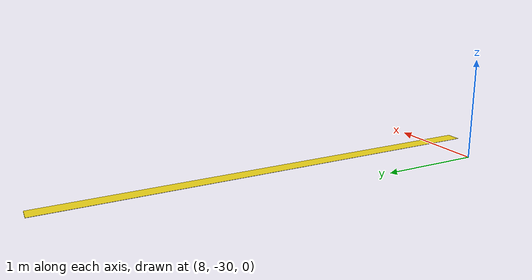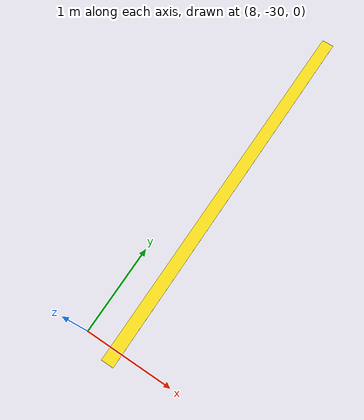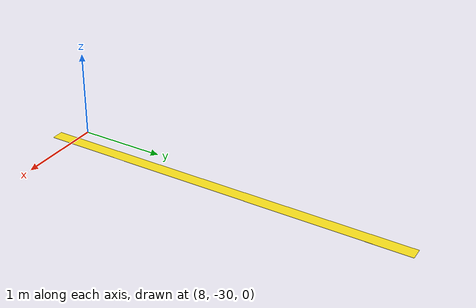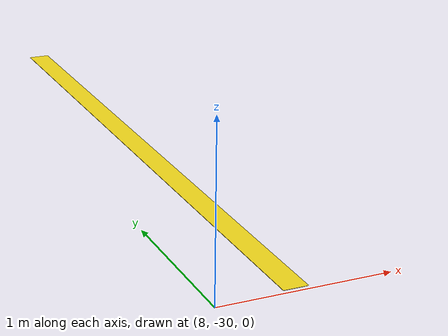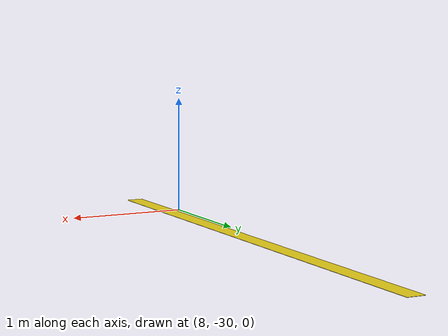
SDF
<?xml version='1.0'?>
<sdf version="1.7">
    <model name="warehouse">
        <pose>0 0 0 0 0 0</pose>
        <self_collide>false</self_collide>
        <!-- BASE_LINK FRAME -->
        <link name="warehouse_base">
            <pose>0 0 0 0 0 0</pose>
            <collision name="warehouse_collision">
                <pose>0 0 0 0 0 0</pose>
                <geometry>
                    <mesh>
                        <scale>1 1 1</scale>
                        <uri>meshes/warehouse_colision.stl</uri>
                    </mesh>
                </geometry>
            </collision>
            <visual name="warehouse_visual">
                <pose>0 0 0 0 0 0</pose>
                <geometry>
                    <mesh>
                        <scale>1 1 1</scale>
                        <uri>meshes/warehouse.dae</uri>
                    </mesh>
                </geometry>
            </visual>

            <visual name="drop_area_visual">
                <pose>8.369245 -27.99206 0.101 0 0 0</pose>
                <geometry>
                    <box>
                        <size>0.14 4.30 0.002</size>
                    </box>
                </geometry>
                <material>
                    <ambient>0.95 0.85 0.10 1</ambient>
                    <diffuse>0.95 0.85 0.10 1</diffuse>
                    <specular>0.10 0.10 0.10 1</specular>
                    <emissive>0.05 0.05 0.00 1</emissive>
                </material>
                <cast_shadows>false</cast_shadows>
            </visual>
        </link>
        <static>1</static>
    </model>
</sdf>
